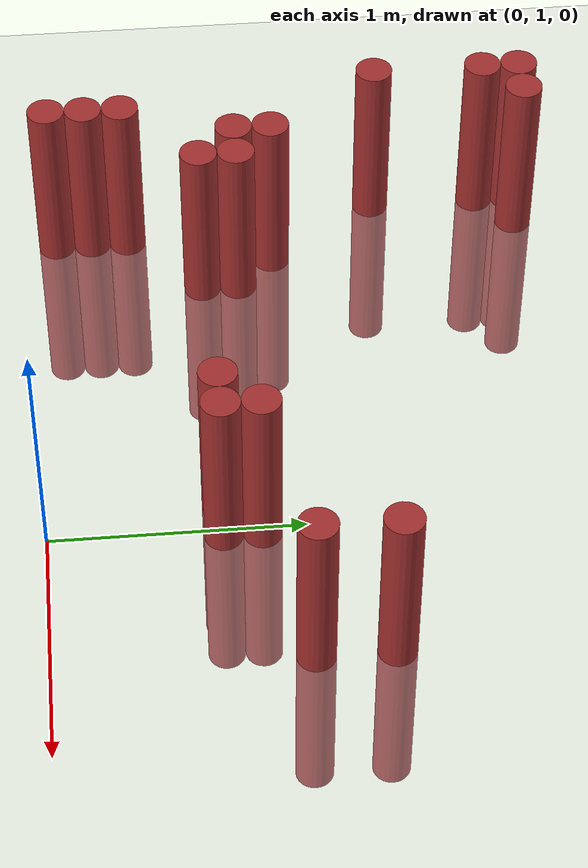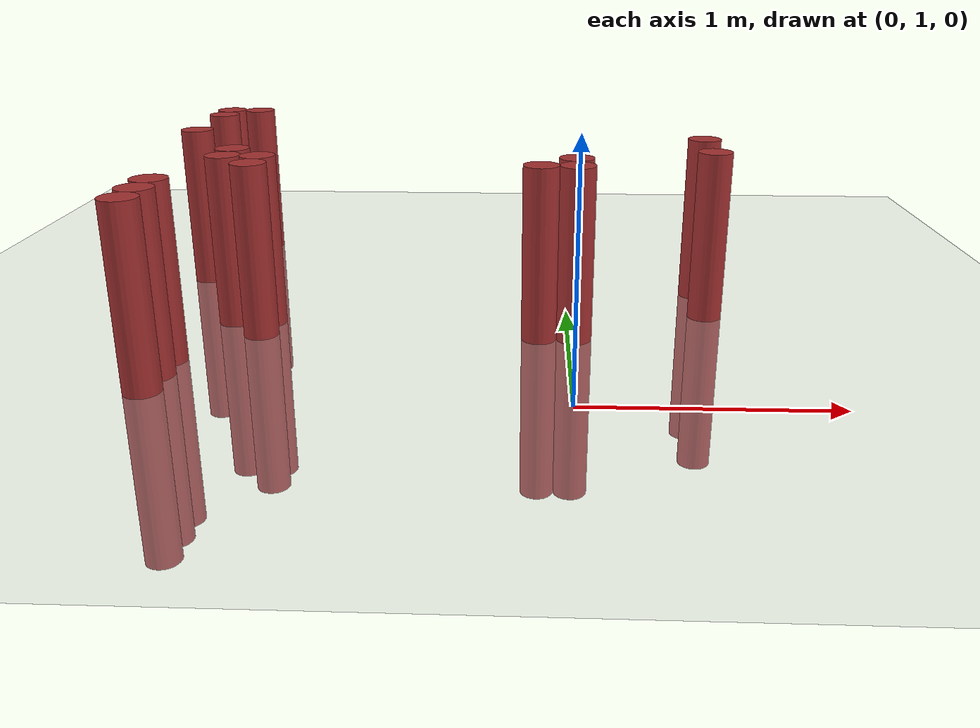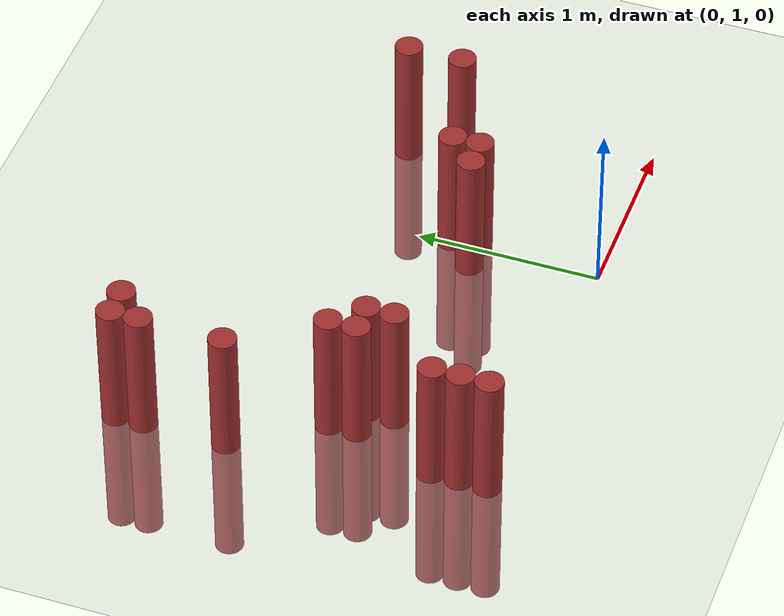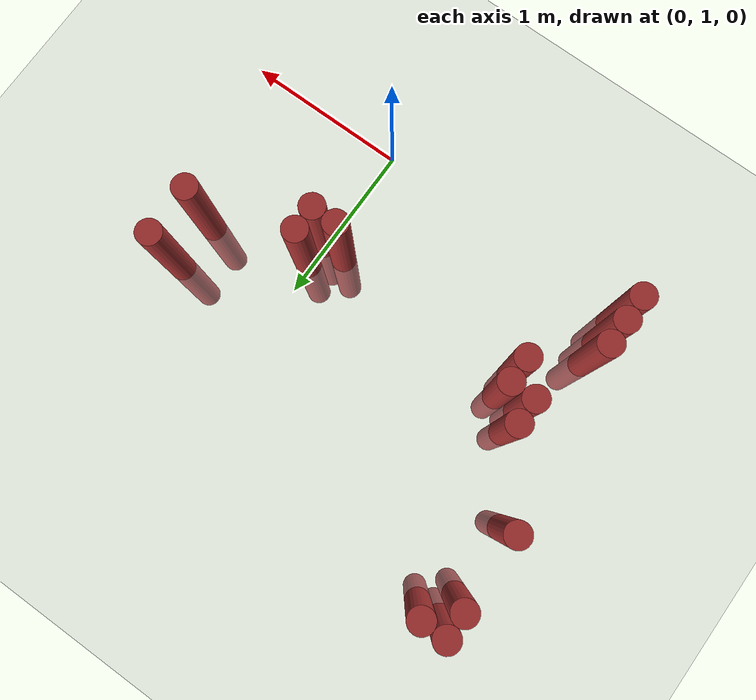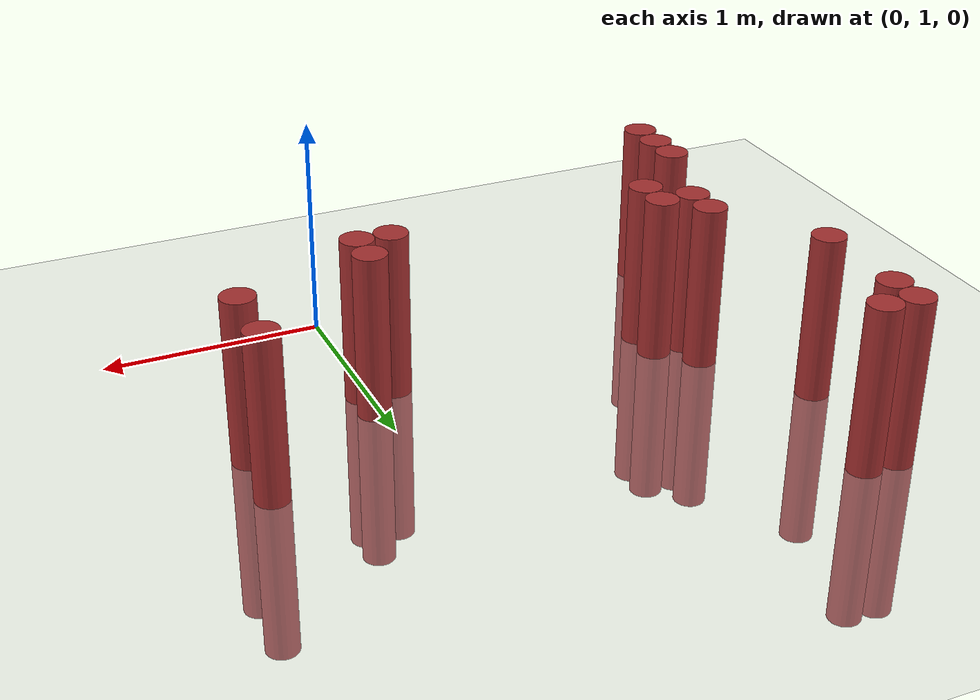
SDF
<sdf version="1.6">
 <world name="default">
  <model name="ground_plane">
   <static>1</static>
   <link name="link">
    <collision name="collision">
     <geometry><plane><normal>0 0 1</normal><size>100 100</size></plane></geometry>
     <surface><friction><ode><mu>100</mu><mu2>50</mu2></ode></friction></surface>
    </collision>
    <visual name="visual">
     <cast_shadows>0</cast_shadows>
     <geometry><plane><normal>0 0 1</normal><size>100 100</size></plane></geometry>
     <material>
      <script><uri>file://media/materials/scripts/gazebo.material</uri><name>Gazebo/Grey</name></script>
     </material>
    </visual>
   </link>
  </model>
  <model name="unit_cylinder_130">
   <static>1</static>
   <pose>-1.775000 2.425000 0.000000 0.000000 0.000000 0.000000</pose>
   <link name="link">
    <inertial>
     <mass>1</mass>
     <inertia><ixx>0.145833</ixx><ixy>0</ixy><ixz>0</ixz><iyy>0.145833</iyy><iyz>0</iyz><izz>0.125</izz></inertia>
    </inertial>
    <collision name="collision">
     <geometry><cylinder><radius>0.075000</radius><length>1.5</length></cylinder></geometry>
    </collision>
    <visual name="visual">
     <geometry><cylinder><radius>0.075000</radius><length>1.5</length></cylinder></geometry>
     <material>
      <ambient>0.648000 0.192000 0.192000 1</ambient>
      <diffuse>0.648000 0.192000 0.192000 1</diffuse>
     </material>
     <material>
      <script><name>Gazebo/Grey</name><uri>file://media/materials/scripts/gazebo.material</uri></script>
     </material>
    </visual>
   </link>
  </model>
  <model name="unit_cylinder_131">
   <static>1</static>
   <pose>-1.775000 2.875000 0.000000 0.000000 0.000000 0.000000</pose>
   <link name="link">
    <inertial>
     <mass>1</mass>
     <inertia><ixx>0.145833</ixx><ixy>0</ixy><ixz>0</ixz><iyy>0.145833</iyy><iyz>0</iyz><izz>0.125</izz></inertia>
    </inertial>
    <collision name="collision">
     <geometry><cylinder><radius>0.075000</radius><length>1.5</length></cylinder></geometry>
    </collision>
    <visual name="visual">
     <geometry><cylinder><radius>0.075000</radius><length>1.5</length></cylinder></geometry>
     <material>
      <ambient>0.648000 0.192000 0.192000 1</ambient>
      <diffuse>0.648000 0.192000 0.192000 1</diffuse>
     </material>
     <material>
      <script><name>Gazebo/Grey</name><uri>file://media/materials/scripts/gazebo.material</uri></script>
     </material>
    </visual>
   </link>
  </model>
  <model name="unit_cylinder_132">
   <static>1</static>
   <pose>-1.775000 3.025000 0.000000 0.000000 0.000000 0.000000</pose>
   <link name="link">
    <inertial>
     <mass>1</mass>
     <inertia><ixx>0.145833</ixx><ixy>0</ixy><ixz>0</ixz><iyy>0.145833</iyy><iyz>0</iyz><izz>0.125</izz></inertia>
    </inertial>
    <collision name="collision">
     <geometry><cylinder><radius>0.075000</radius><length>1.5</length></cylinder></geometry>
    </collision>
    <visual name="visual">
     <geometry><cylinder><radius>0.075000</radius><length>1.5</length></cylinder></geometry>
     <material>
      <ambient>0.648000 0.192000 0.192000 1</ambient>
      <diffuse>0.648000 0.192000 0.192000 1</diffuse>
     </material>
     <material>
      <script><name>Gazebo/Grey</name><uri>file://media/materials/scripts/gazebo.material</uri></script>
     </material>
    </visual>
   </link>
  </model>
  <model name="unit_cylinder_139">
   <static>1</static>
   <pose>-1.625000 1.075000 0.000000 0.000000 0.000000 0.000000</pose>
   <link name="link">
    <inertial>
     <mass>1</mass>
     <inertia><ixx>0.145833</ixx><ixy>0</ixy><ixz>0</ixz><iyy>0.145833</iyy><iyz>0</iyz><izz>0.125</izz></inertia>
    </inertial>
    <collision name="collision">
     <geometry><cylinder><radius>0.075000</radius><length>1.5</length></cylinder></geometry>
    </collision>
    <visual name="visual">
     <geometry><cylinder><radius>0.075000</radius><length>1.5</length></cylinder></geometry>
     <material>
      <ambient>0.648000 0.192000 0.192000 1</ambient>
      <diffuse>0.648000 0.192000 0.192000 1</diffuse>
     </material>
     <material>
      <script><name>Gazebo/Grey</name><uri>file://media/materials/scripts/gazebo.material</uri></script>
     </material>
    </visual>
   </link>
  </model>
  <model name="unit_cylinder_140">
   <static>1</static>
   <pose>-1.625000 1.225000 0.000000 0.000000 0.000000 0.000000</pose>
   <link name="link">
    <inertial>
     <mass>1</mass>
     <inertia><ixx>0.145833</ixx><ixy>0</ixy><ixz>0</ixz><iyy>0.145833</iyy><iyz>0</iyz><izz>0.125</izz></inertia>
    </inertial>
    <collision name="collision">
     <geometry><cylinder><radius>0.075000</radius><length>1.5</length></cylinder></geometry>
    </collision>
    <visual name="visual">
     <geometry><cylinder><radius>0.075000</radius><length>1.5</length></cylinder></geometry>
     <material>
      <ambient>0.648000 0.192000 0.192000 1</ambient>
      <diffuse>0.648000 0.192000 0.192000 1</diffuse>
     </material>
     <material>
      <script><name>Gazebo/Grey</name><uri>file://media/materials/scripts/gazebo.material</uri></script>
     </material>
    </visual>
   </link>
  </model>
  <model name="unit_cylinder_141">
   <static>1</static>
   <pose>-1.625000 1.375000 0.000000 0.000000 0.000000 0.000000</pose>
   <link name="link">
    <inertial>
     <mass>1</mass>
     <inertia><ixx>0.145833</ixx><ixy>0</ixy><ixz>0</ixz><iyy>0.145833</iyy><iyz>0</iyz><izz>0.125</izz></inertia>
    </inertial>
    <collision name="collision">
     <geometry><cylinder><radius>0.075000</radius><length>1.5</length></cylinder></geometry>
    </collision>
    <visual name="visual">
     <geometry><cylinder><radius>0.075000</radius><length>1.5</length></cylinder></geometry>
     <material>
      <ambient>0.648000 0.192000 0.192000 1</ambient>
      <diffuse>0.648000 0.192000 0.192000 1</diffuse>
     </material>
     <material>
      <script><name>Gazebo/Grey</name><uri>file://media/materials/scripts/gazebo.material</uri></script>
     </material>
    </visual>
   </link>
  </model>
  <model name="unit_cylinder_142">
   <static>1</static>
   <pose>-1.625000 3.025000 0.000000 0.000000 0.000000 0.000000</pose>
   <link name="link">
    <inertial>
     <mass>1</mass>
     <inertia><ixx>0.145833</ixx><ixy>0</ixy><ixz>0</ixz><iyy>0.145833</iyy><iyz>0</iyz><izz>0.125</izz></inertia>
    </inertial>
    <collision name="collision">
     <geometry><cylinder><radius>0.075000</radius><length>1.5</length></cylinder></geometry>
    </collision>
    <visual name="visual">
     <geometry><cylinder><radius>0.075000</radius><length>1.5</length></cylinder></geometry>
     <material>
      <ambient>0.648000 0.192000 0.192000 1</ambient>
      <diffuse>0.648000 0.192000 0.192000 1</diffuse>
     </material>
     <material>
      <script><name>Gazebo/Grey</name><uri>file://media/materials/scripts/gazebo.material</uri></script>
     </material>
    </visual>
   </link>
  </model>
  <model name="unit_cylinder_146">
   <static>1</static>
   <pose>-1.475000 1.825000 0.000000 0.000000 0.000000 0.000000</pose>
   <link name="link">
    <inertial>
     <mass>1</mass>
     <inertia><ixx>0.145833</ixx><ixy>0</ixy><ixz>0</ixz><iyy>0.145833</iyy><iyz>0</iyz><izz>0.125</izz></inertia>
    </inertial>
    <collision name="collision">
     <geometry><cylinder><radius>0.075000</radius><length>1.5</length></cylinder></geometry>
    </collision>
    <visual name="visual">
     <geometry><cylinder><radius>0.075000</radius><length>1.5</length></cylinder></geometry>
     <material>
      <ambient>0.648000 0.192000 0.192000 1</ambient>
      <diffuse>0.648000 0.192000 0.192000 1</diffuse>
     </material>
     <material>
      <script><name>Gazebo/Grey</name><uri>file://media/materials/scripts/gazebo.material</uri></script>
     </material>
    </visual>
   </link>
  </model>
  <model name="unit_cylinder_147">
   <static>1</static>
   <pose>-1.475000 1.975000 0.000000 0.000000 0.000000 0.000000</pose>
   <link name="link">
    <inertial>
     <mass>1</mass>
     <inertia><ixx>0.145833</ixx><ixy>0</ixy><ixz>0</ixz><iyy>0.145833</iyy><iyz>0</iyz><izz>0.125</izz></inertia>
    </inertial>
    <collision name="collision">
     <geometry><cylinder><radius>0.075000</radius><length>1.5</length></cylinder></geometry>
    </collision>
    <visual name="visual">
     <geometry><cylinder><radius>0.075000</radius><length>1.5</length></cylinder></geometry>
     <material>
      <ambient>0.648000 0.192000 0.192000 1</ambient>
      <diffuse>0.648000 0.192000 0.192000 1</diffuse>
     </material>
     <material>
      <script><name>Gazebo/Grey</name><uri>file://media/materials/scripts/gazebo.material</uri></script>
     </material>
    </visual>
   </link>
  </model>
  <model name="unit_cylinder_152">
   <static>1</static>
   <pose>-1.325000 1.675000 0.000000 0.000000 0.000000 0.000000</pose>
   <link name="link">
    <inertial>
     <mass>1</mass>
     <inertia><ixx>0.145833</ixx><ixy>0</ixy><ixz>0</ixz><iyy>0.145833</iyy><iyz>0</iyz><izz>0.125</izz></inertia>
    </inertial>
    <collision name="collision">
     <geometry><cylinder><radius>0.075000</radius><length>1.5</length></cylinder></geometry>
    </collision>
    <visual name="visual">
     <geometry><cylinder><radius>0.075000</radius><length>1.5</length></cylinder></geometry>
     <material>
      <ambient>0.648000 0.192000 0.192000 1</ambient>
      <diffuse>0.648000 0.192000 0.192000 1</diffuse>
     </material>
     <material>
      <script><name>Gazebo/Grey</name><uri>file://media/materials/scripts/gazebo.material</uri></script>
     </material>
    </visual>
   </link>
  </model>
  <model name="unit_cylinder_153">
   <static>1</static>
   <pose>-1.325000 1.825000 0.000000 0.000000 0.000000 0.000000</pose>
   <link name="link">
    <inertial>
     <mass>1</mass>
     <inertia><ixx>0.145833</ixx><ixy>0</ixy><ixz>0</ixz><iyy>0.145833</iyy><iyz>0</iyz><izz>0.125</izz></inertia>
    </inertial>
    <collision name="collision">
     <geometry><cylinder><radius>0.075000</radius><length>1.5</length></cylinder></geometry>
    </collision>
    <visual name="visual">
     <geometry><cylinder><radius>0.075000</radius><length>1.5</length></cylinder></geometry>
     <material>
      <ambient>0.648000 0.192000 0.192000 1</ambient>
      <diffuse>0.648000 0.192000 0.192000 1</diffuse>
     </material>
     <material>
      <script><name>Gazebo/Grey</name><uri>file://media/materials/scripts/gazebo.material</uri></script>
     </material>
    </visual>
   </link>
  </model>
  <model name="unit_cylinder_162">
   <static>1</static>
   <pose>-0.125000 1.675000 0.000000 0.000000 0.000000 0.000000</pose>
   <link name="link">
    <inertial>
     <mass>1</mass>
     <inertia><ixx>0.145833</ixx><ixy>0</ixy><ixz>0</ixz><iyy>0.145833</iyy><iyz>0</iyz><izz>0.125</izz></inertia>
    </inertial>
    <collision name="collision">
     <geometry><cylinder><radius>0.075000</radius><length>1.5</length></cylinder></geometry>
    </collision>
    <visual name="visual">
     <geometry><cylinder><radius>0.075000</radius><length>1.5</length></cylinder></geometry>
     <material>
      <ambient>0.648000 0.192000 0.192000 1</ambient>
      <diffuse>0.648000 0.192000 0.192000 1</diffuse>
     </material>
     <material>
      <script><name>Gazebo/Grey</name><uri>file://media/materials/scripts/gazebo.material</uri></script>
     </material>
    </visual>
   </link>
  </model>
  <model name="unit_cylinder_163">
   <static>1</static>
   <pose>0.025000 1.675000 0.000000 0.000000 0.000000 0.000000</pose>
   <link name="link">
    <inertial>
     <mass>1</mass>
     <inertia><ixx>0.145833</ixx><ixy>0</ixy><ixz>0</ixz><iyy>0.145833</iyy><iyz>0</iyz><izz>0.125</izz></inertia>
    </inertial>
    <collision name="collision">
     <geometry><cylinder><radius>0.075000</radius><length>1.5</length></cylinder></geometry>
    </collision>
    <visual name="visual">
     <geometry><cylinder><radius>0.075000</radius><length>1.5</length></cylinder></geometry>
     <material>
      <ambient>0.648000 0.192000 0.192000 1</ambient>
      <diffuse>0.648000 0.192000 0.192000 1</diffuse>
     </material>
     <material>
      <script><name>Gazebo/Grey</name><uri>file://media/materials/scripts/gazebo.material</uri></script>
     </material>
    </visual>
   </link>
  </model>
  <model name="unit_cylinder_164">
   <static>1</static>
   <pose>0.025000 1.825000 0.000000 0.000000 0.000000 0.000000</pose>
   <link name="link">
    <inertial>
     <mass>1</mass>
     <inertia><ixx>0.145833</ixx><ixy>0</ixy><ixz>0</ixz><iyy>0.145833</iyy><iyz>0</iyz><izz>0.125</izz></inertia>
    </inertial>
    <collision name="collision">
     <geometry><cylinder><radius>0.075000</radius><length>1.5</length></cylinder></geometry>
    </collision>
    <visual name="visual">
     <geometry><cylinder><radius>0.075000</radius><length>1.5</length></cylinder></geometry>
     <material>
      <ambient>0.648000 0.192000 0.192000 1</ambient>
      <diffuse>0.648000 0.192000 0.192000 1</diffuse>
     </material>
     <material>
      <script><name>Gazebo/Grey</name><uri>file://media/materials/scripts/gazebo.material</uri></script>
     </material>
    </visual>
   </link>
  </model>
  <model name="unit_cylinder_172">
   <static>1</static>
   <pose>0.625000 1.975000 0.000000 0.000000 0.000000 0.000000</pose>
   <link name="link">
    <inertial>
     <mass>1</mass>
     <inertia><ixx>0.145833</ixx><ixy>0</ixy><ixz>0</ixz><iyy>0.145833</iyy><iyz>0</iyz><izz>0.125</izz></inertia>
    </inertial>
    <collision name="collision">
     <geometry><cylinder><radius>0.075000</radius><length>1.5</length></cylinder></geometry>
    </collision>
    <visual name="visual">
     <geometry><cylinder><radius>0.075000</radius><length>1.5</length></cylinder></geometry>
     <material>
      <ambient>0.648000 0.192000 0.192000 1</ambient>
      <diffuse>0.648000 0.192000 0.192000 1</diffuse>
     </material>
     <material>
      <script><name>Gazebo/Grey</name><uri>file://media/materials/scripts/gazebo.material</uri></script>
     </material>
    </visual>
   </link>
  </model>
  <model name="unit_cylinder_173">
   <static>1</static>
   <pose>0.625000 2.275000 0.000000 0.000000 0.000000 0.000000</pose>
   <link name="link">
    <inertial>
     <mass>1</mass>
     <inertia><ixx>0.145833</ixx><ixy>0</ixy><ixz>0</ixz><iyy>0.145833</iyy><iyz>0</iyz><izz>0.125</izz></inertia>
    </inertial>
    <collision name="collision">
     <geometry><cylinder><radius>0.075000</radius><length>1.5</length></cylinder></geometry>
    </collision>
    <visual name="visual">
     <geometry><cylinder><radius>0.075000</radius><length>1.5</length></cylinder></geometry>
     <material>
      <ambient>0.648000 0.192000 0.192000 1</ambient>
      <diffuse>0.648000 0.192000 0.192000 1</diffuse>
     </material>
     <material>
      <script><name>Gazebo/Grey</name><uri>file://media/materials/scripts/gazebo.material</uri></script>
     </material>
    </visual>
   </link>
  </model>
 </world>
</sdf>
